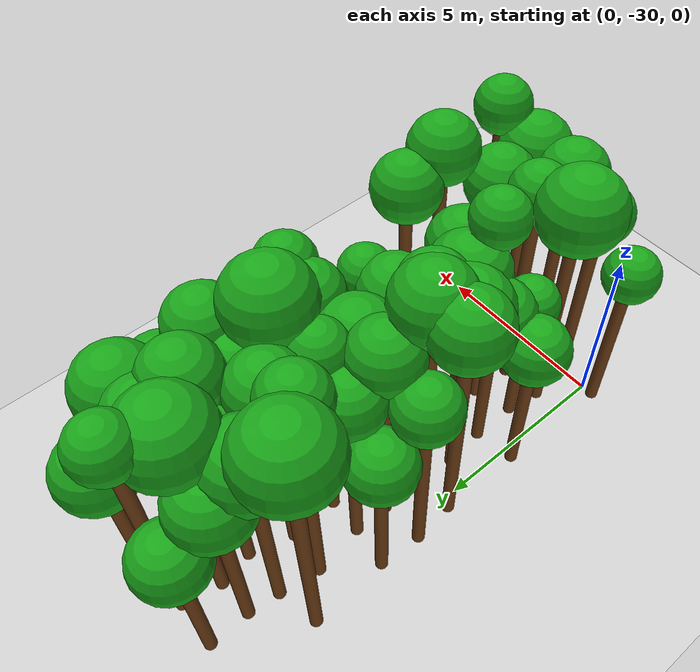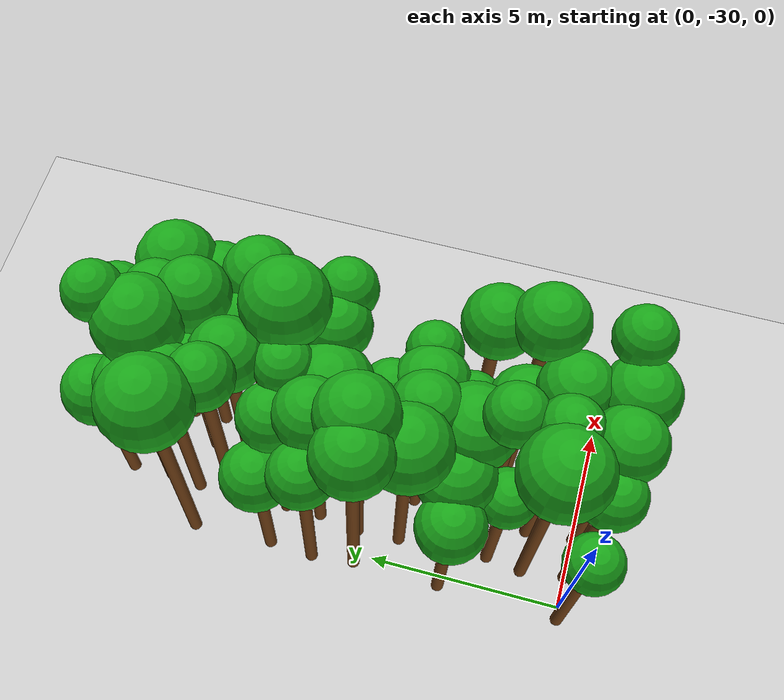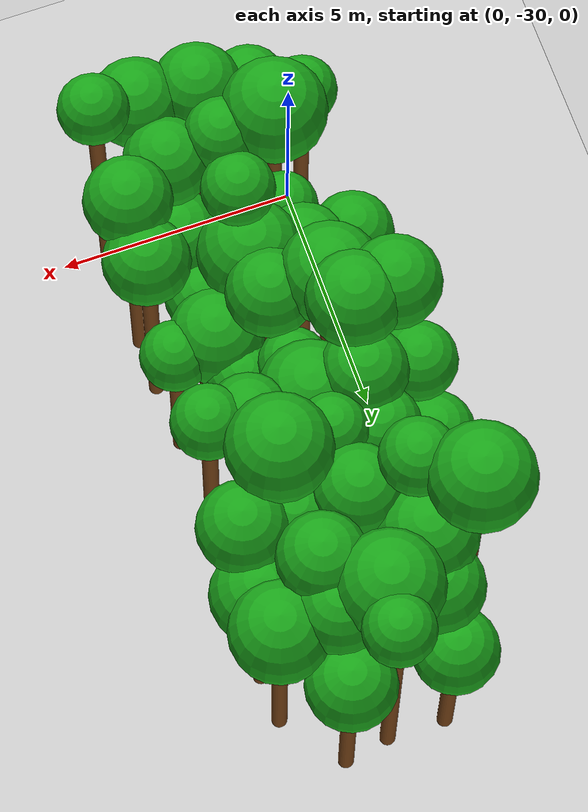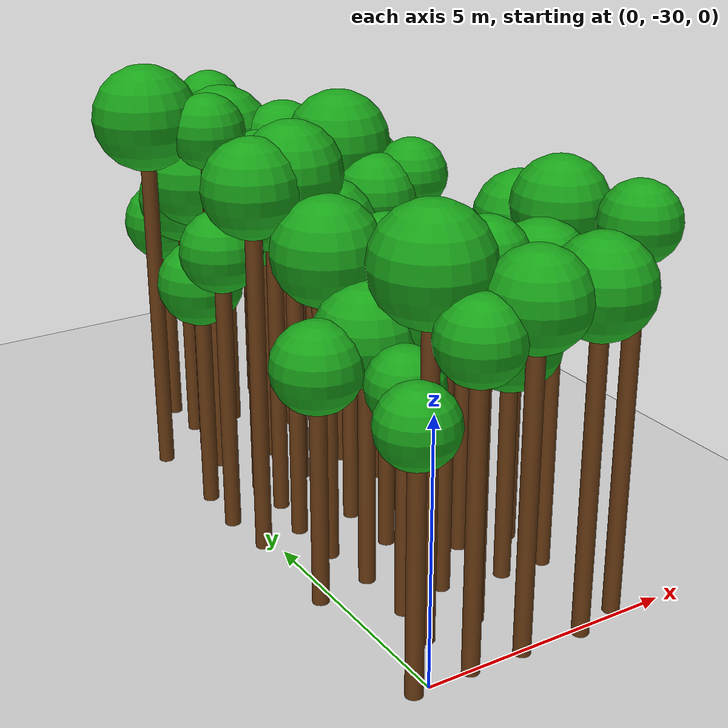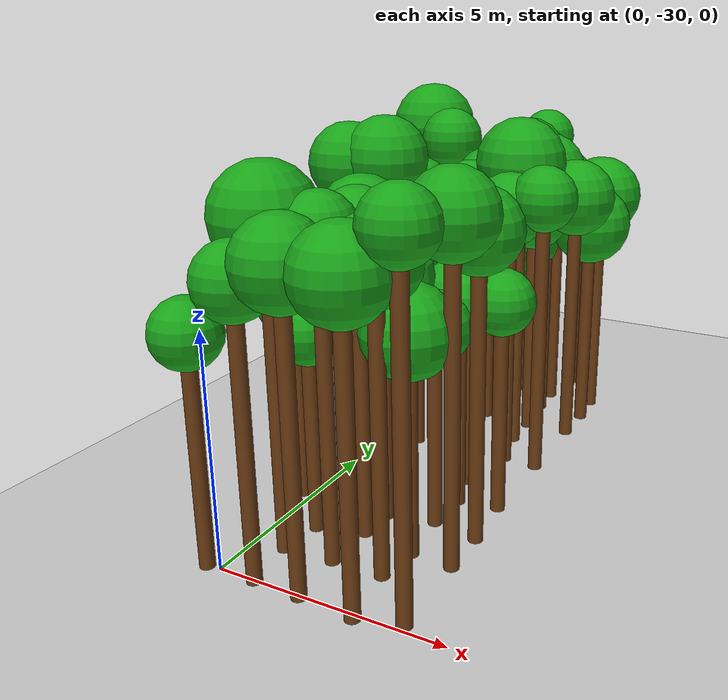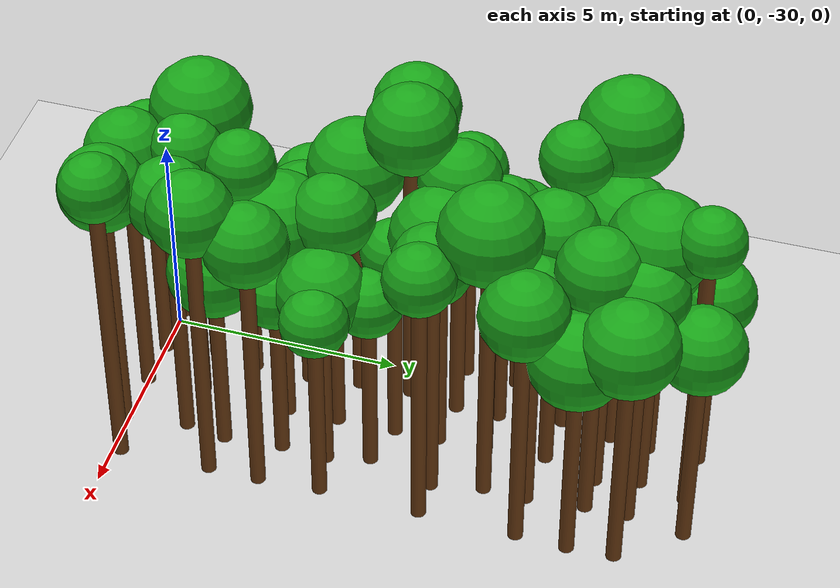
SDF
<sdf version="1.6">
 <world name="forest_world">
  <include><uri>model://sun</uri></include>
  <include><uri>model://ground_plane</uri></include>
  <model name="tree_1477_trunk">
   <static>true</static>
   <pose>-0.31 -30.02 2.23 0 0 0</pose>
   <link name="link">
    <collision name="collision">
     <geometry><cylinder><radius>0.16</radius><length>4.47</length></cylinder></geometry>
    </collision>
    <visual name="visual">
     <geometry><cylinder><radius>0.16</radius><length>4.47</length></cylinder></geometry>
     <material><ambient>0.35 0.20 0.05 1</ambient><diffuse>0.45 0.25 0.08 1</diffuse></material>
    </visual>
   </link>
  </model>
  <model name="tree_1477_leaf">
   <static>true</static>
   <pose>-0.31 -30.02 4.90 0 0 0</pose>
   <link name="link">
    <collision name="collision"><geometry><sphere><radius>0.71</radius></sphere></geometry></collision>
    <visual name="visual">
     <geometry><sphere><radius>0.71</radius></sphere></geometry>
     <material><ambient>0.05 0.45 0.05 1</ambient><diffuse>0.10 0.65 0.10 1</diffuse></material>
    </visual>
   </link>
  </model>
  <model name="tree_1480_trunk">
   <static>true</static>
   <pose>-0.24 -26.84 2.08 0 0 0</pose>
   <link name="link">
    <collision name="collision">
     <geometry><cylinder><radius>0.16</radius><length>4.16</length></cylinder></geometry>
    </collision>
    <visual name="visual">
     <geometry><cylinder><radius>0.16</radius><length>4.16</length></cylinder></geometry>
     <material><ambient>0.35 0.20 0.05 1</ambient><diffuse>0.45 0.25 0.08 1</diffuse></material>
    </visual>
   </link>
  </model>
  <model name="tree_1480_leaf">
   <static>true</static>
   <pose>-0.24 -26.84 4.66 0 0 0</pose>
   <link name="link">
    <collision name="collision"><geometry><sphere><radius>0.84</radius></sphere></geometry></collision>
    <visual name="visual">
     <geometry><sphere><radius>0.84</radius></sphere></geometry>
     <material><ambient>0.05 0.45 0.05 1</ambient><diffuse>0.10 0.65 0.10 1</diffuse></material>
    </visual>
   </link>
  </model>
  <model name="tree_1482_trunk">
   <static>true</static>
   <pose>-0.21 -24.56 3.34 0 0 0</pose>
   <link name="link">
    <collision name="collision">
     <geometry><cylinder><radius>0.16</radius><length>6.68</length></cylinder></geometry>
    </collision>
    <visual name="visual">
     <geometry><cylinder><radius>0.16</radius><length>6.68</length></cylinder></geometry>
     <material><ambient>0.35 0.20 0.05 1</ambient><diffuse>0.45 0.25 0.08 1</diffuse></material>
    </visual>
   </link>
  </model>
  <model name="tree_1482_leaf">
   <static>true</static>
   <pose>-0.21 -24.56 7.23 0 0 0</pose>
   <link name="link">
    <collision name="collision"><geometry><sphere><radius>0.92</radius></sphere></geometry></collision>
    <visual name="visual">
     <geometry><sphere><radius>0.92</radius></sphere></geometry>
     <material><ambient>0.05 0.45 0.05 1</ambient><diffuse>0.10 0.65 0.10 1</diffuse></material>
    </visual>
   </link>
  </model>
  <model name="tree_1483_trunk">
   <static>true</static>
   <pose>-0.32 -23.44 2.64 0 0 0</pose>
   <link name="link">
    <collision name="collision">
     <geometry><cylinder><radius>0.16</radius><length>5.29</length></cylinder></geometry>
    </collision>
    <visual name="visual">
     <geometry><cylinder><radius>0.16</radius><length>5.29</length></cylinder></geometry>
     <material><ambient>0.35 0.20 0.05 1</ambient><diffuse>0.45 0.25 0.08 1</diffuse></material>
    </visual>
   </link>
  </model>
  <model name="tree_1483_leaf">
   <static>true</static>
   <pose>-0.32 -23.44 5.76 0 0 0</pose>
   <link name="link">
    <collision name="collision"><geometry><sphere><radius>0.79</radius></sphere></geometry></collision>
    <visual name="visual">
     <geometry><sphere><radius>0.79</radius></sphere></geometry>
     <material><ambient>0.05 0.45 0.05 1</ambient><diffuse>0.10 0.65 0.10 1</diffuse></material>
    </visual>
   </link>
  </model>
  <model name="tree_1484_trunk">
   <static>true</static>
   <pose>-0.25 -22.29 2.13 0 0 0</pose>
   <link name="link">
    <collision name="collision">
     <geometry><cylinder><radius>0.16</radius><length>4.26</length></cylinder></geometry>
    </collision>
    <visual name="visual">
     <geometry><cylinder><radius>0.16</radius><length>4.26</length></cylinder></geometry>
     <material><ambient>0.35 0.20 0.05 1</ambient><diffuse>0.45 0.25 0.08 1</diffuse></material>
    </visual>
   </link>
  </model>
  <model name="tree_1484_leaf">
   <static>true</static>
   <pose>-0.25 -22.29 4.76 0 0 0</pose>
   <link name="link">
    <collision name="collision"><geometry><sphere><radius>0.84</radius></sphere></geometry></collision>
    <visual name="visual">
     <geometry><sphere><radius>0.84</radius></sphere></geometry>
     <material><ambient>0.05 0.45 0.05 1</ambient><diffuse>0.10 0.65 0.10 1</diffuse></material>
    </visual>
   </link>
  </model>
  <model name="tree_1486_trunk">
   <static>true</static>
   <pose>-0.32 -20.21 3.49 0 0 0</pose>
   <link name="link">
    <collision name="collision">
     <geometry><cylinder><radius>0.16</radius><length>6.97</length></cylinder></geometry>
    </collision>
    <visual name="visual">
     <geometry><cylinder><radius>0.16</radius><length>6.97</length></cylinder></geometry>
     <material><ambient>0.35 0.20 0.05 1</ambient><diffuse>0.45 0.25 0.08 1</diffuse></material>
    </visual>
   </link>
  </model>
  <model name="tree_1486_leaf">
   <static>true</static>
   <pose>-0.32 -20.21 7.61 0 0 0</pose>
   <link name="link">
    <collision name="collision"><geometry><sphere><radius>1.06</radius></sphere></geometry></collision>
    <visual name="visual">
     <geometry><sphere><radius>1.06</radius></sphere></geometry>
     <material><ambient>0.05 0.45 0.05 1</ambient><diffuse>0.10 0.65 0.10 1</diffuse></material>
    </visual>
   </link>
  </model>
  <model name="tree_1526_trunk">
   <static>true</static>
   <pose>0.84 -30.00 2.79 0 0 0</pose>
   <link name="link">
    <collision name="collision">
     <geometry><cylinder><radius>0.16</radius><length>5.59</length></cylinder></geometry>
    </collision>
    <visual name="visual">
     <geometry><cylinder><radius>0.16</radius><length>5.59</length></cylinder></geometry>
     <material><ambient>0.35 0.20 0.05 1</ambient><diffuse>0.45 0.25 0.08 1</diffuse></material>
    </visual>
   </link>
  </model>
  <model name="tree_1526_leaf">
   <static>true</static>
   <pose>0.84 -30.00 6.04 0 0 0</pose>
   <link name="link">
    <collision name="collision"><geometry><sphere><radius>0.76</radius></sphere></geometry></collision>
    <visual name="visual">
     <geometry><sphere><radius>0.76</radius></sphere></geometry>
     <material><ambient>0.05 0.45 0.05 1</ambient><diffuse>0.10 0.65 0.10 1</diffuse></material>
    </visual>
   </link>
  </model>
  <model name="tree_1527_trunk">
   <static>true</static>
   <pose>0.71 -28.85 3.15 0 0 0</pose>
   <link name="link">
    <collision name="collision">
     <geometry><cylinder><radius>0.16</radius><length>6.31</length></cylinder></geometry>
    </collision>
    <visual name="visual">
     <geometry><cylinder><radius>0.16</radius><length>6.31</length></cylinder></geometry>
     <material><ambient>0.35 0.20 0.05 1</ambient><diffuse>0.45 0.25 0.08 1</diffuse></material>
    </visual>
   </link>
  </model>
  <model name="tree_1527_leaf">
   <static>true</static>
   <pose>0.71 -28.85 6.94 0 0 0</pose>
   <link name="link">
    <collision name="collision"><geometry><sphere><radius>1.06</radius></sphere></geometry></collision>
    <visual name="visual">
     <geometry><sphere><radius>1.06</radius></sphere></geometry>
     <material><ambient>0.05 0.45 0.05 1</ambient><diffuse>0.10 0.65 0.10 1</diffuse></material>
    </visual>
   </link>
  </model>
  <model name="tree_1528_trunk">
   <static>true</static>
   <pose>0.85 -27.91 2.02 0 0 0</pose>
   <link name="link">
    <collision name="collision">
     <geometry><cylinder><radius>0.16</radius><length>4.04</length></cylinder></geometry>
    </collision>
    <visual name="visual">
     <geometry><cylinder><radius>0.16</radius><length>4.04</length></cylinder></geometry>
     <material><ambient>0.35 0.20 0.05 1</ambient><diffuse>0.45 0.25 0.08 1</diffuse></material>
    </visual>
   </link>
  </model>
  <model name="tree_1528_leaf">
   <static>true</static>
   <pose>0.85 -27.91 4.47 0 0 0</pose>
   <link name="link">
    <collision name="collision"><geometry><sphere><radius>0.72</radius></sphere></geometry></collision>
    <visual name="visual">
     <geometry><sphere><radius>0.72</radius></sphere></geometry>
     <material><ambient>0.05 0.45 0.05 1</ambient><diffuse>0.10 0.65 0.10 1</diffuse></material>
    </visual>
   </link>
  </model>
  <model name="tree_1529_trunk">
   <static>true</static>
   <pose>0.85 -26.67 2.19 0 0 0</pose>
   <link name="link">
    <collision name="collision">
     <geometry><cylinder><radius>0.16</radius><length>4.38</length></cylinder></geometry>
    </collision>
    <visual name="visual">
     <geometry><cylinder><radius>0.16</radius><length>4.38</length></cylinder></geometry>
     <material><ambient>0.35 0.20 0.05 1</ambient><diffuse>0.45 0.25 0.08 1</diffuse></material>
    </visual>
   </link>
  </model>
  <model name="tree_1529_leaf">
   <static>true</static>
   <pose>0.85 -26.67 4.96 0 0 0</pose>
   <link name="link">
    <collision name="collision"><geometry><sphere><radius>0.96</radius></sphere></geometry></collision>
    <visual name="visual">
     <geometry><sphere><radius>0.96</radius></sphere></geometry>
     <material><ambient>0.05 0.45 0.05 1</ambient><diffuse>0.10 0.65 0.10 1</diffuse></material>
    </visual>
   </link>
  </model>
  <model name="tree_1530_trunk">
   <static>true</static>
   <pose>0.72 -25.55 2.78 0 0 0</pose>
   <link name="link">
    <collision name="collision">
     <geometry><cylinder><radius>0.16</radius><length>5.56</length></cylinder></geometry>
    </collision>
    <visual name="visual">
     <geometry><cylinder><radius>0.16</radius><length>5.56</length></cylinder></geometry>
     <material><ambient>0.35 0.20 0.05 1</ambient><diffuse>0.45 0.25 0.08 1</diffuse></material>
    </visual>
   </link>
  </model>
  <model name="tree_1530_leaf">
   <static>true</static>
   <pose>0.72 -25.55 6.18 0 0 0</pose>
   <link name="link">
    <collision name="collision"><geometry><sphere><radius>1.03</radius></sphere></geometry></collision>
    <visual name="visual">
     <geometry><sphere><radius>1.03</radius></sphere></geometry>
     <material><ambient>0.05 0.45 0.05 1</ambient><diffuse>0.10 0.65 0.10 1</diffuse></material>
    </visual>
   </link>
  </model>
  <model name="tree_1531_trunk">
   <static>true</static>
   <pose>0.66 -24.43 3.40 0 0 0</pose>
   <link name="link">
    <collision name="collision">
     <geometry><cylinder><radius>0.16</radius><length>6.80</length></cylinder></geometry>
    </collision>
    <visual name="visual">
     <geometry><cylinder><radius>0.16</radius><length>6.80</length></cylinder></geometry>
     <material><ambient>0.35 0.20 0.05 1</ambient><diffuse>0.45 0.25 0.08 1</diffuse></material>
    </visual>
   </link>
  </model>
  <model name="tree_1531_leaf">
   <static>true</static>
   <pose>0.66 -24.43 7.37 0 0 0</pose>
   <link name="link">
    <collision name="collision"><geometry><sphere><radius>0.95</radius></sphere></geometry></collision>
    <visual name="visual">
     <geometry><sphere><radius>0.95</radius></sphere></geometry>
     <material><ambient>0.05 0.45 0.05 1</ambient><diffuse>0.10 0.65 0.10 1</diffuse></material>
    </visual>
   </link>
  </model>
  <model name="tree_1532_trunk">
   <static>true</static>
   <pose>0.83 -23.35 2.95 0 0 0</pose>
   <link name="link">
    <collision name="collision">
     <geometry><cylinder><radius>0.16</radius><length>5.90</length></cylinder></geometry>
    </collision>
    <visual name="visual">
     <geometry><cylinder><radius>0.16</radius><length>5.90</length></cylinder></geometry>
     <material><ambient>0.35 0.20 0.05 1</ambient><diffuse>0.45 0.25 0.08 1</diffuse></material>
    </visual>
   </link>
  </model>
  <model name="tree_1532_leaf">
   <static>true</static>
   <pose>0.83 -23.35 6.42 0 0 0</pose>
   <link name="link">
    <collision name="collision"><geometry><sphere><radius>0.87</radius></sphere></geometry></collision>
    <visual name="visual">
     <geometry><sphere><radius>0.87</radius></sphere></geometry>
     <material><ambient>0.05 0.45 0.05 1</ambient><diffuse>0.10 0.65 0.10 1</diffuse></material>
    </visual>
   </link>
  </model>
  <model name="tree_1533_trunk">
   <static>true</static>
   <pose>0.83 -22.41 2.64 0 0 0</pose>
   <link name="link">
    <collision name="collision">
     <geometry><cylinder><radius>0.16</radius><length>5.27</length></cylinder></geometry>
    </collision>
    <visual name="visual">
     <geometry><cylinder><radius>0.16</radius><length>5.27</length></cylinder></geometry>
     <material><ambient>0.35 0.20 0.05 1</ambient><diffuse>0.45 0.25 0.08 1</diffuse></material>
    </visual>
   </link>
  </model>
  <model name="tree_1533_leaf">
   <static>true</static>
   <pose>0.83 -22.41 5.76 0 0 0</pose>
   <link name="link">
    <collision name="collision"><geometry><sphere><radius>0.82</radius></sphere></geometry></collision>
    <visual name="visual">
     <geometry><sphere><radius>0.82</radius></sphere></geometry>
     <material><ambient>0.05 0.45 0.05 1</ambient><diffuse>0.10 0.65 0.10 1</diffuse></material>
    </visual>
   </link>
  </model>
  <model name="tree_1534_trunk">
   <static>true</static>
   <pose>0.62 -21.05 3.47 0 0 0</pose>
   <link name="link">
    <collision name="collision">
     <geometry><cylinder><radius>0.16</radius><length>6.93</length></cylinder></geometry>
    </collision>
    <visual name="visual">
     <geometry><cylinder><radius>0.16</radius><length>6.93</length></cylinder></geometry>
     <material><ambient>0.35 0.20 0.05 1</ambient><diffuse>0.45 0.25 0.08 1</diffuse></material>
    </visual>
   </link>
  </model>
  <model name="tree_1534_leaf">
   <static>true</static>
   <pose>0.62 -21.05 7.39 0 0 0</pose>
   <link name="link">
    <collision name="collision"><geometry><sphere><radius>0.76</radius></sphere></geometry></collision>
    <visual name="visual">
     <geometry><sphere><radius>0.76</radius></sphere></geometry>
     <material><ambient>0.05 0.45 0.05 1</ambient><diffuse>0.10 0.65 0.10 1</diffuse></material>
    </visual>
   </link>
  </model>
  <model name="tree_1535_trunk">
   <static>true</static>
   <pose>0.78 -19.96 2.78 0 0 0</pose>
   <link name="link">
    <collision name="collision">
     <geometry><cylinder><radius>0.16</radius><length>5.55</length></cylinder></geometry>
    </collision>
    <visual name="visual">
     <geometry><cylinder><radius>0.16</radius><length>5.55</length></cylinder></geometry>
     <material><ambient>0.35 0.20 0.05 1</ambient><diffuse>0.45 0.25 0.08 1</diffuse></material>
    </visual>
   </link>
  </model>
  <model name="tree_1535_leaf">
   <static>true</static>
   <pose>0.78 -19.96 6.15 0 0 0</pose>
   <link name="link">
    <collision name="collision"><geometry><sphere><radius>1.00</radius></sphere></geometry></collision>
    <visual name="visual">
     <geometry><sphere><radius>1.00</radius></sphere></geometry>
     <material><ambient>0.05 0.45 0.05 1</ambient><diffuse>0.10 0.65 0.10 1</diffuse></material>
    </visual>
   </link>
  </model>
  <model name="tree_1536_trunk">
   <static>true</static>
   <pose>0.88 -19.12 2.47 0 0 0</pose>
   <link name="link">
    <collision name="collision">
     <geometry><cylinder><radius>0.16</radius><length>4.93</length></cylinder></geometry>
    </collision>
    <visual name="visual">
     <geometry><cylinder><radius>0.16</radius><length>4.93</length></cylinder></geometry>
     <material><ambient>0.35 0.20 0.05 1</ambient><diffuse>0.45 0.25 0.08 1</diffuse></material>
    </visual>
   </link>
  </model>
  <model name="tree_1536_leaf">
   <static>true</static>
   <pose>0.88 -19.12 5.50 0 0 0</pose>
   <link name="link">
    <collision name="collision"><geometry><sphere><radius>0.95</radius></sphere></geometry></collision>
    <visual name="visual">
     <geometry><sphere><radius>0.95</radius></sphere></geometry>
     <material><ambient>0.05 0.45 0.05 1</ambient><diffuse>0.10 0.65 0.10 1</diffuse></material>
    </visual>
   </link>
  </model>
  <model name="tree_1537_trunk">
   <static>true</static>
   <pose>0.86 -18.04 2.08 0 0 0</pose>
   <link name="link">
    <collision name="collision">
     <geometry><cylinder><radius>0.16</radius><length>4.17</length></cylinder></geometry>
    </collision>
    <visual name="visual">
     <geometry><cylinder><radius>0.16</radius><length>4.17</length></cylinder></geometry>
     <material><ambient>0.35 0.20 0.05 1</ambient><diffuse>0.45 0.25 0.08 1</diffuse></material>
    </visual>
   </link>
  </model>
  <model name="tree_1537_leaf">
   <static>true</static>
   <pose>0.86 -18.04 4.68 0 0 0</pose>
   <link name="link">
    <collision name="collision"><geometry><sphere><radius>0.86</radius></sphere></geometry></collision>
    <visual name="visual">
     <geometry><sphere><radius>0.86</radius></sphere></geometry>
     <material><ambient>0.05 0.45 0.05 1</ambient><diffuse>0.10 0.65 0.10 1</diffuse></material>
    </visual>
   </link>
  </model>
  <model name="tree_1576_trunk">
   <static>true</static>
   <pose>1.90 -30.03 2.98 0 0 0</pose>
   <link name="link">
    <collision name="collision">
     <geometry><cylinder><radius>0.16</radius><length>5.96</length></cylinder></geometry>
    </collision>
    <visual name="visual">
     <geometry><cylinder><radius>0.16</radius><length>5.96</length></cylinder></geometry>
     <material><ambient>0.35 0.20 0.05 1</ambient><diffuse>0.45 0.25 0.08 1</diffuse></material>
    </visual>
   </link>
  </model>
  <model name="tree_1576_leaf">
   <static>true</static>
   <pose>1.90 -30.03 6.50 0 0 0</pose>
   <link name="link">
    <collision name="collision"><geometry><sphere><radius>0.89</radius></sphere></geometry></collision>
    <visual name="visual">
     <geometry><sphere><radius>0.89</radius></sphere></geometry>
     <material><ambient>0.05 0.45 0.05 1</ambient><diffuse>0.10 0.65 0.10 1</diffuse></material>
    </visual>
   </link>
  </model>
  <model name="tree_1577_trunk">
   <static>true</static>
   <pose>1.82 -28.77 3.16 0 0 0</pose>
   <link name="link">
    <collision name="collision">
     <geometry><cylinder><radius>0.16</radius><length>6.33</length></cylinder></geometry>
    </collision>
    <visual name="visual">
     <geometry><cylinder><radius>0.16</radius><length>6.33</length></cylinder></geometry>
     <material><ambient>0.35 0.20 0.05 1</ambient><diffuse>0.45 0.25 0.08 1</diffuse></material>
    </visual>
   </link>
  </model>
  <model name="tree_1577_leaf">
   <static>true</static>
   <pose>1.82 -28.77 6.78 0 0 0</pose>
   <link name="link">
    <collision name="collision"><geometry><sphere><radius>0.75</radius></sphere></geometry></collision>
    <visual name="visual">
     <geometry><sphere><radius>0.75</radius></sphere></geometry>
     <material><ambient>0.05 0.45 0.05 1</ambient><diffuse>0.10 0.65 0.10 1</diffuse></material>
    </visual>
   </link>
  </model>
  <model name="tree_1578_trunk">
   <static>true</static>
   <pose>1.88 -27.62 3.11 0 0 0</pose>
   <link name="link">
    <collision name="collision">
     <geometry><cylinder><radius>0.16</radius><length>6.22</length></cylinder></geometry>
    </collision>
    <visual name="visual">
     <geometry><cylinder><radius>0.16</radius><length>6.22</length></cylinder></geometry>
     <material><ambient>0.35 0.20 0.05 1</ambient><diffuse>0.45 0.25 0.08 1</diffuse></material>
    </visual>
   </link>
  </model>
  <model name="tree_1578_leaf">
   <static>true</static>
   <pose>1.88 -27.62 6.67 0 0 0</pose>
   <link name="link">
    <collision name="collision"><geometry><sphere><radius>0.74</radius></sphere></geometry></collision>
    <visual name="visual">
     <geometry><sphere><radius>0.74</radius></sphere></geometry>
     <material><ambient>0.05 0.45 0.05 1</ambient><diffuse>0.10 0.65 0.10 1</diffuse></material>
    </visual>
   </link>
  </model>
  <model name="tree_1579_trunk">
   <static>true</static>
   <pose>1.93 -26.80 2.39 0 0 0</pose>
   <link name="link">
    <collision name="collision">
     <geometry><cylinder><radius>0.16</radius><length>4.79</length></cylinder></geometry>
    </collision>
    <visual name="visual">
     <geometry><cylinder><radius>0.16</radius><length>4.79</length></cylinder></geometry>
     <material><ambient>0.35 0.20 0.05 1</ambient><diffuse>0.45 0.25 0.08 1</diffuse></material>
    </visual>
   </link>
  </model>
  <model name="tree_1579_leaf">
   <static>true</static>
   <pose>1.93 -26.80 5.43 0 0 0</pose>
   <link name="link">
    <collision name="collision"><geometry><sphere><radius>1.06</radius></sphere></geometry></collision>
    <visual name="visual">
     <geometry><sphere><radius>1.06</radius></sphere></geometry>
     <material><ambient>0.05 0.45 0.05 1</ambient><diffuse>0.10 0.65 0.10 1</diffuse></material>
    </visual>
   </link>
  </model>
  <model name="tree_1580_trunk">
   <static>true</static>
   <pose>1.90 -25.69 2.65 0 0 0</pose>
   <link name="link">
    <collision name="collision">
     <geometry><cylinder><radius>0.16</radius><length>5.31</length></cylinder></geometry>
    </collision>
    <visual name="visual">
     <geometry><cylinder><radius>0.16</radius><length>5.31</length></cylinder></geometry>
     <material><ambient>0.35 0.20 0.05 1</ambient><diffuse>0.45 0.25 0.08 1</diffuse></material>
    </visual>
   </link>
  </model>
  <model name="tree_1580_leaf">
   <static>true</static>
   <pose>1.90 -25.69 5.84 0 0 0</pose>
   <link name="link">
    <collision name="collision"><geometry><sphere><radius>0.89</radius></sphere></geometry></collision>
    <visual name="visual">
     <geometry><sphere><radius>0.89</radius></sphere></geometry>
     <material><ambient>0.05 0.45 0.05 1</ambient><diffuse>0.10 0.65 0.10 1</diffuse></material>
    </visual>
   </link>
  </model>
  <model name="tree_1581_trunk">
   <static>true</static>
   <pose>1.86 -24.42 2.35 0 0 0</pose>
   <link name="link">
    <collision name="collision">
     <geometry><cylinder><radius>0.16</radius><length>4.71</length></cylinder></geometry>
    </collision>
    <visual name="visual">
     <geometry><cylinder><radius>0.16</radius><length>4.71</length></cylinder></geometry>
     <material><ambient>0.35 0.20 0.05 1</ambient><diffuse>0.45 0.25 0.08 1</diffuse></material>
    </visual>
   </link>
  </model>
  <model name="tree_1581_leaf">
   <static>true</static>
   <pose>1.86 -24.42 5.13 0 0 0</pose>
   <link name="link">
    <collision name="collision"><geometry><sphere><radius>0.71</radius></sphere></geometry></collision>
    <visual name="visual">
     <geometry><sphere><radius>0.71</radius></sphere></geometry>
     <material><ambient>0.05 0.45 0.05 1</ambient><diffuse>0.10 0.65 0.10 1</diffuse></material>
    </visual>
   </link>
  </model>
  <model name="tree_1582_trunk">
   <static>true</static>
   <pose>1.86 -23.46 2.58 0 0 0</pose>
   <link name="link">
    <collision name="collision">
     <geometry><cylinder><radius>0.16</radius><length>5.16</length></cylinder></geometry>
    </collision>
    <visual name="visual">
     <geometry><cylinder><radius>0.16</radius><length>5.16</length></cylinder></geometry>
     <material><ambient>0.35 0.20 0.05 1</ambient><diffuse>0.45 0.25 0.08 1</diffuse></material>
    </visual>
   </link>
  </model>
  <model name="tree_1582_leaf">
   <static>true</static>
   <pose>1.86 -23.46 5.80 0 0 0</pose>
   <link name="link">
    <collision name="collision"><geometry><sphere><radius>1.06</radius></sphere></geometry></collision>
    <visual name="visual">
     <geometry><sphere><radius>1.06</radius></sphere></geometry>
     <material><ambient>0.05 0.45 0.05 1</ambient><diffuse>0.10 0.65 0.10 1</diffuse></material>
    </visual>
   </link>
  </model>
  <model name="tree_1583_trunk">
   <static>true</static>
   <pose>1.81 -22.44 3.00 0 0 0</pose>
   <link name="link">
    <collision name="collision">
     <geometry><cylinder><radius>0.16</radius><length>6.01</length></cylinder></geometry>
    </collision>
    <visual name="visual">
     <geometry><cylinder><radius>0.16</radius><length>6.01</length></cylinder></geometry>
     <material><ambient>0.35 0.20 0.05 1</ambient><diffuse>0.45 0.25 0.08 1</diffuse></material>
    </visual>
   </link>
  </model>
  <model name="tree_1583_leaf">
   <static>true</static>
   <pose>1.81 -22.44 6.43 0 0 0</pose>
   <link name="link">
    <collision name="collision"><geometry><sphere><radius>0.71</radius></sphere></geometry></collision>
    <visual name="visual">
     <geometry><sphere><radius>0.71</radius></sphere></geometry>
     <material><ambient>0.05 0.45 0.05 1</ambient><diffuse>0.10 0.65 0.10 1</diffuse></material>
    </visual>
   </link>
  </model>
  <model name="tree_1584_trunk">
   <static>true</static>
   <pose>1.74 -21.14 2.93 0 0 0</pose>
   <link name="link">
    <collision name="collision">
     <geometry><cylinder><radius>0.16</radius><length>5.86</length></cylinder></geometry>
    </collision>
    <visual name="visual">
     <geometry><cylinder><radius>0.16</radius><length>5.86</length></cylinder></geometry>
     <material><ambient>0.35 0.20 0.05 1</ambient><diffuse>0.45 0.25 0.08 1</diffuse></material>
    </visual>
   </link>
  </model>
  <model name="tree_1584_leaf">
   <static>true</static>
   <pose>1.74 -21.14 6.39 0 0 0</pose>
   <link name="link">
    <collision name="collision"><geometry><sphere><radius>0.89</radius></sphere></geometry></collision>
    <visual name="visual">
     <geometry><sphere><radius>0.89</radius></sphere></geometry>
     <material><ambient>0.05 0.45 0.05 1</ambient><diffuse>0.10 0.65 0.10 1</diffuse></material>
    </visual>
   </link>
  </model>
  <model name="tree_1585_trunk">
   <static>true</static>
   <pose>2.08 -19.99 2.05 0 0 0</pose>
   <link name="link">
    <collision name="collision">
     <geometry><cylinder><radius>0.16</radius><length>4.11</length></cylinder></geometry>
    </collision>
    <visual name="visual">
     <geometry><cylinder><radius>0.16</radius><length>4.11</length></cylinder></geometry>
     <material><ambient>0.35 0.20 0.05 1</ambient><diffuse>0.45 0.25 0.08 1</diffuse></material>
    </visual>
   </link>
  </model>
  <model name="tree_1585_leaf">
   <static>true</static>
   <pose>2.08 -19.99 4.75 0 0 0</pose>
   <link name="link">
    <collision name="collision"><geometry><sphere><radius>1.07</radius></sphere></geometry></collision>
    <visual name="visual">
     <geometry><sphere><radius>1.07</radius></sphere></geometry>
     <material><ambient>0.05 0.45 0.05 1</ambient><diffuse>0.10 0.65 0.10 1</diffuse></material>
    </visual>
   </link>
  </model>
  <model name="tree_1586_trunk">
   <static>true</static>
   <pose>1.88 -19.07 3.04 0 0 0</pose>
   <link name="link">
    <collision name="collision">
     <geometry><cylinder><radius>0.16</radius><length>6.08</length></cylinder></geometry>
    </collision>
    <visual name="visual">
     <geometry><cylinder><radius>0.16</radius><length>6.08</length></cylinder></geometry>
     <material><ambient>0.35 0.20 0.05 1</ambient><diffuse>0.45 0.25 0.08 1</diffuse></material>
    </visual>
   </link>
  </model>
  <model name="tree_1586_leaf">
   <static>true</static>
   <pose>1.88 -19.07 6.72 0 0 0</pose>
   <link name="link">
    <collision name="collision"><geometry><sphere><radius>1.07</radius></sphere></geometry></collision>
    <visual name="visual">
     <geometry><sphere><radius>1.07</radius></sphere></geometry>
     <material><ambient>0.05 0.45 0.05 1</ambient><diffuse>0.10 0.65 0.10 1</diffuse></material>
    </visual>
   </link>
  </model>
  <model name="tree_1587_trunk">
   <static>true</static>
   <pose>2.08 -18.06 3.38 0 0 0</pose>
   <link name="link">
    <collision name="collision">
     <geometry><cylinder><radius>0.16</radius><length>6.77</length></cylinder></geometry>
    </collision>
    <visual name="visual">
     <geometry><cylinder><radius>0.16</radius><length>6.77</length></cylinder></geometry>
     <material><ambient>0.35 0.20 0.05 1</ambient><diffuse>0.45 0.25 0.08 1</diffuse></material>
    </visual>
   </link>
  </model>
  <model name="tree_1587_leaf">
   <static>true</static>
   <pose>2.08 -18.06 7.20 0 0 0</pose>
   <link name="link">
    <collision name="collision"><geometry><sphere><radius>0.71</radius></sphere></geometry></collision>
    <visual name="visual">
     <geometry><sphere><radius>0.71</radius></sphere></geometry>
     <material><ambient>0.05 0.45 0.05 1</ambient><diffuse>0.10 0.65 0.10 1</diffuse></material>
    </visual>
   </link>
  </model>
  <model name="tree_1627_trunk">
   <static>true</static>
   <pose>3.13 -30.10 2.97 0 0 0</pose>
   <link name="link">
    <collision name="collision">
     <geometry><cylinder><radius>0.16</radius><length>5.94</length></cylinder></geometry>
    </collision>
    <visual name="visual">
     <geometry><cylinder><radius>0.16</radius><length>5.94</length></cylinder></geometry>
     <material><ambient>0.35 0.20 0.05 1</ambient><diffuse>0.45 0.25 0.08 1</diffuse></material>
    </visual>
   </link>
  </model>
  <model name="tree_1627_leaf">
   <static>true</static>
   <pose>3.13 -30.10 6.49 0 0 0</pose>
   <link name="link">
    <collision name="collision"><geometry><sphere><radius>0.91</radius></sphere></geometry></collision>
    <visual name="visual">
     <geometry><sphere><radius>0.91</radius></sphere></geometry>
     <material><ambient>0.05 0.45 0.05 1</ambient><diffuse>0.10 0.65 0.10 1</diffuse></material>
    </visual>
   </link>
  </model>
  <model name="tree_1628_trunk">
   <static>true</static>
   <pose>2.95 -28.75 2.92 0 0 0</pose>
   <link name="link">
    <collision name="collision">
     <geometry><cylinder><radius>0.16</radius><length>5.85</length></cylinder></geometry>
    </collision>
    <visual name="visual">
     <geometry><cylinder><radius>0.16</radius><length>5.85</length></cylinder></geometry>
     <material><ambient>0.35 0.20 0.05 1</ambient><diffuse>0.45 0.25 0.08 1</diffuse></material>
    </visual>
   </link>
  </model>
  <model name="tree_1628_leaf">
   <static>true</static>
   <pose>2.95 -28.75 6.38 0 0 0</pose>
   <link name="link">
    <collision name="collision"><geometry><sphere><radius>0.89</radius></sphere></geometry></collision>
    <visual name="visual">
     <geometry><sphere><radius>0.89</radius></sphere></geometry>
     <material><ambient>0.05 0.45 0.05 1</ambient><diffuse>0.10 0.65 0.10 1</diffuse></material>
    </visual>
   </link>
  </model>
  <model name="tree_1629_trunk">
   <static>true</static>
   <pose>3.10 -27.85 2.12 0 0 0</pose>
   <link name="link">
    <collision name="collision">
     <geometry><cylinder><radius>0.16</radius><length>4.23</length></cylinder></geometry>
    </collision>
    <visual name="visual">
     <geometry><cylinder><radius>0.16</radius><length>4.23</length></cylinder></geometry>
     <material><ambient>0.35 0.20 0.05 1</ambient><diffuse>0.45 0.25 0.08 1</diffuse></material>
    </visual>
   </link>
  </model>
  <model name="tree_1629_leaf">
   <static>true</static>
   <pose>3.10 -27.85 4.81 0 0 0</pose>
   <link name="link">
    <collision name="collision"><geometry><sphere><radius>0.96</radius></sphere></geometry></collision>
    <visual name="visual">
     <geometry><sphere><radius>0.96</radius></sphere></geometry>
     <material><ambient>0.05 0.45 0.05 1</ambient><diffuse>0.10 0.65 0.10 1</diffuse></material>
    </visual>
   </link>
  </model>
  <model name="tree_1630_trunk">
   <static>true</static>
   <pose>2.99 -26.59 2.00 0 0 0</pose>
   <link name="link">
    <collision name="collision">
     <geometry><cylinder><radius>0.16</radius><length>4.00</length></cylinder></geometry>
    </collision>
    <visual name="visual">
     <geometry><cylinder><radius>0.16</radius><length>4.00</length></cylinder></geometry>
     <material><ambient>0.35 0.20 0.05 1</ambient><diffuse>0.45 0.25 0.08 1</diffuse></material>
    </visual>
   </link>
  </model>
  <model name="tree_1630_leaf">
   <static>true</static>
   <pose>2.99 -26.59 4.47 0 0 0</pose>
   <link name="link">
    <collision name="collision"><geometry><sphere><radius>0.77</radius></sphere></geometry></collision>
    <visual name="visual">
     <geometry><sphere><radius>0.77</radius></sphere></geometry>
     <material><ambient>0.05 0.45 0.05 1</ambient><diffuse>0.10 0.65 0.10 1</diffuse></material>
    </visual>
   </link>
  </model>
  <model name="tree_1631_trunk">
   <static>true</static>
   <pose>3.05 -25.59 2.10 0 0 0</pose>
   <link name="link">
    <collision name="collision">
     <geometry><cylinder><radius>0.16</radius><length>4.19</length></cylinder></geometry>
    </collision>
    <visual name="visual">
     <geometry><cylinder><radius>0.16</radius><length>4.19</length></cylinder></geometry>
     <material><ambient>0.35 0.20 0.05 1</ambient><diffuse>0.45 0.25 0.08 1</diffuse></material>
    </visual>
   </link>
  </model>
  <model name="tree_1631_leaf">
   <static>true</static>
   <pose>3.05 -25.59 4.77 0 0 0</pose>
   <link name="link">
    <collision name="collision"><geometry><sphere><radius>0.96</radius></sphere></geometry></collision>
    <visual name="visual">
     <geometry><sphere><radius>0.96</radius></sphere></geometry>
     <material><ambient>0.05 0.45 0.05 1</ambient><diffuse>0.10 0.65 0.10 1</diffuse></material>
    </visual>
   </link>
  </model>
  <model name="tree_1632_trunk">
   <static>true</static>
   <pose>2.82 -24.68 2.05 0 0 0</pose>
   <link name="link">
    <collision name="collision">
     <geometry><cylinder><radius>0.16</radius><length>4.09</length></cylinder></geometry>
    </collision>
    <visual name="visual">
     <geometry><cylinder><radius>0.16</radius><length>4.09</length></cylinder></geometry>
     <material><ambient>0.35 0.20 0.05 1</ambient><diffuse>0.45 0.25 0.08 1</diffuse></material>
    </visual>
   </link>
  </model>
  <model name="tree_1632_leaf">
   <static>true</static>
   <pose>2.82 -24.68 4.53 0 0 0</pose>
   <link name="link">
    <collision name="collision"><geometry><sphere><radius>0.73</radius></sphere></geometry></collision>
    <visual name="visual">
     <geometry><sphere><radius>0.73</radius></sphere></geometry>
     <material><ambient>0.05 0.45 0.05 1</ambient><diffuse>0.10 0.65 0.10 1</diffuse></material>
    </visual>
   </link>
  </model>
  <model name="tree_1633_trunk">
   <static>true</static>
   <pose>3.18 -23.26 2.87 0 0 0</pose>
   <link name="link">
    <collision name="collision">
     <geometry><cylinder><radius>0.16</radius><length>5.73</length></cylinder></geometry>
    </collision>
    <visual name="visual">
     <geometry><cylinder><radius>0.16</radius><length>5.73</length></cylinder></geometry>
     <material><ambient>0.35 0.20 0.05 1</ambient><diffuse>0.45 0.25 0.08 1</diffuse></material>
    </visual>
   </link>
  </model>
  <model name="tree_1633_leaf">
   <static>true</static>
   <pose>3.18 -23.26 6.24 0 0 0</pose>
   <link name="link">
    <collision name="collision"><geometry><sphere><radius>0.84</radius></sphere></geometry></collision>
    <visual name="visual">
     <geometry><sphere><radius>0.84</radius></sphere></geometry>
     <material><ambient>0.05 0.45 0.05 1</ambient><diffuse>0.10 0.65 0.10 1</diffuse></material>
    </visual>
   </link>
  </model>
  <model name="tree_1634_trunk">
   <static>true</static>
   <pose>2.96 -22.17 3.24 0 0 0</pose>
   <link name="link">
    <collision name="collision">
     <geometry><cylinder><radius>0.16</radius><length>6.48</length></cylinder></geometry>
    </collision>
    <visual name="visual">
     <geometry><cylinder><radius>0.16</radius><length>6.48</length></cylinder></geometry>
     <material><ambient>0.35 0.20 0.05 1</ambient><diffuse>0.45 0.25 0.08 1</diffuse></material>
    </visual>
   </link>
  </model>
  <model name="tree_1634_leaf">
   <static>true</static>
   <pose>2.96 -22.17 7.11 0 0 0</pose>
   <link name="link">
    <collision name="collision"><geometry><sphere><radius>1.05</radius></sphere></geometry></collision>
    <visual name="visual">
     <geometry><sphere><radius>1.05</radius></sphere></geometry>
     <material><ambient>0.05 0.45 0.05 1</ambient><diffuse>0.10 0.65 0.10 1</diffuse></material>
    </visual>
   </link>
  </model>
  <model name="tree_1635_trunk">
   <static>true</static>
   <pose>2.98 -21.25 2.61 0 0 0</pose>
   <link name="link">
    <collision name="collision">
     <geometry><cylinder><radius>0.16</radius><length>5.22</length></cylinder></geometry>
    </collision>
    <visual name="visual">
     <geometry><cylinder><radius>0.16</radius><length>5.22</length></cylinder></geometry>
     <material><ambient>0.35 0.20 0.05 1</ambient><diffuse>0.45 0.25 0.08 1</diffuse></material>
    </visual>
   </link>
  </model>
  <model name="tree_1635_leaf">
   <static>true</static>
   <pose>2.98 -21.25 5.75 0 0 0</pose>
   <link name="link">
    <collision name="collision"><geometry><sphere><radius>0.89</radius></sphere></geometry></collision>
    <visual name="visual">
     <geometry><sphere><radius>0.89</radius></sphere></geometry>
     <material><ambient>0.05 0.45 0.05 1</ambient><diffuse>0.10 0.65 0.10 1</diffuse></material>
    </visual>
   </link>
  </model>
  <model name="tree_1636_trunk">
   <static>true</static>
   <pose>2.87 -20.01 3.06 0 0 0</pose>
   <link name="link">
    <collision name="collision">
     <geometry><cylinder><radius>0.16</radius><length>6.11</length></cylinder></geometry>
    </collision>
    <visual name="visual">
     <geometry><cylinder><radius>0.16</radius><length>6.11</length></cylinder></geometry>
     <material><ambient>0.35 0.20 0.05 1</ambient><diffuse>0.45 0.25 0.08 1</diffuse></material>
    </visual>
   </link>
  </model>
  <model name="tree_1636_leaf">
   <static>true</static>
   <pose>2.87 -20.01 6.64 0 0 0</pose>
   <link name="link">
    <collision name="collision"><geometry><sphere><radius>0.89</radius></sphere></geometry></collision>
    <visual name="visual">
     <geometry><sphere><radius>0.89</radius></sphere></geometry>
     <material><ambient>0.05 0.45 0.05 1</ambient><diffuse>0.10 0.65 0.10 1</diffuse></material>
    </visual>
   </link>
  </model>
  <model name="tree_1637_trunk">
   <static>true</static>
   <pose>2.84 -19.12 2.82 0 0 0</pose>
   <link name="link">
    <collision name="collision">
     <geometry><cylinder><radius>0.16</radius><length>5.65</length></cylinder></geometry>
    </collision>
    <visual name="visual">
     <geometry><cylinder><radius>0.16</radius><length>5.65</length></cylinder></geometry>
     <material><ambient>0.35 0.20 0.05 1</ambient><diffuse>0.45 0.25 0.08 1</diffuse></material>
    </visual>
   </link>
  </model>
  <model name="tree_1637_leaf">
   <static>true</static>
   <pose>2.84 -19.12 6.19 0 0 0</pose>
   <link name="link">
    <collision name="collision"><geometry><sphere><radius>0.90</radius></sphere></geometry></collision>
    <visual name="visual">
     <geometry><sphere><radius>0.90</radius></sphere></geometry>
     <material><ambient>0.05 0.45 0.05 1</ambient><diffuse>0.10 0.65 0.10 1</diffuse></material>
    </visual>
   </link>
  </model>
  <model name="tree_1638_trunk">
   <static>true</static>
   <pose>3.03 -17.89 2.37 0 0 0</pose>
   <link name="link">
    <collision name="collision">
     <geometry><cylinder><radius>0.16</radius><length>4.75</length></cylinder></geometry>
    </collision>
    <visual name="visual">
     <geometry><cylinder><radius>0.16</radius><length>4.75</length></cylinder></geometry>
     <material><ambient>0.35 0.20 0.05 1</ambient><diffuse>0.45 0.25 0.08 1</diffuse></material>
    </visual>
   </link>
  </model>
  <model name="tree_1638_leaf">
   <static>true</static>
   <pose>3.03 -17.89 5.28 0 0 0</pose>
   <link name="link">
    <collision name="collision"><geometry><sphere><radius>0.90</radius></sphere></geometry></collision>
    <visual name="visual">
     <geometry><sphere><radius>0.90</radius></sphere></geometry>
     <material><ambient>0.05 0.45 0.05 1</ambient><diffuse>0.10 0.65 0.10 1</diffuse></material>
    </visual>
   </link>
  </model>
  <model name="tree_1682_trunk">
   <static>true</static>
   <pose>4.06 -29.84 3.45 0 0 0</pose>
   <link name="link">
    <collision name="collision">
     <geometry><cylinder><radius>0.16</radius><length>6.90</length></cylinder></geometry>
    </collision>
    <visual name="visual">
     <geometry><cylinder><radius>0.16</radius><length>6.90</length></cylinder></geometry>
     <material><ambient>0.35 0.20 0.05 1</ambient><diffuse>0.45 0.25 0.08 1</diffuse></material>
    </visual>
   </link>
  </model>
  <model name="tree_1682_leaf">
   <static>true</static>
   <pose>4.06 -29.84 7.33 0 0 0</pose>
   <link name="link">
    <collision name="collision"><geometry><sphere><radius>0.71</radius></sphere></geometry></collision>
    <visual name="visual">
     <geometry><sphere><radius>0.71</radius></sphere></geometry>
     <material><ambient>0.05 0.45 0.05 1</ambient><diffuse>0.10 0.65 0.10 1</diffuse></material>
    </visual>
   </link>
  </model>
  <model name="tree_1684_trunk">
   <static>true</static>
   <pose>4.02 -27.88 3.29 0 0 0</pose>
   <link name="link">
    <collision name="collision">
     <geometry><cylinder><radius>0.16</radius><length>6.59</length></cylinder></geometry>
    </collision>
    <visual name="visual">
     <geometry><cylinder><radius>0.16</radius><length>6.59</length></cylinder></geometry>
     <material><ambient>0.35 0.20 0.05 1</ambient><diffuse>0.45 0.25 0.08 1</diffuse></material>
    </visual>
   </link>
  </model>
  <model name="tree_1684_leaf">
   <static>true</static>
   <pose>4.02 -27.88 7.12 0 0 0</pose>
   <link name="link">
    <collision name="collision"><geometry><sphere><radius>0.88</radius></sphere></geometry></collision>
    <visual name="visual">
     <geometry><sphere><radius>0.88</radius></sphere></geometry>
     <material><ambient>0.05 0.45 0.05 1</ambient><diffuse>0.10 0.65 0.10 1</diffuse></material>
    </visual>
   </link>
  </model>
  <model name="tree_1685_trunk">
   <static>true</static>
   <pose>4.03 -26.78 3.04 0 0 0</pose>
   <link name="link">
    <collision name="collision">
     <geometry><cylinder><radius>0.16</radius><length>6.08</length></cylinder></geometry>
    </collision>
    <visual name="visual">
     <geometry><cylinder><radius>0.16</radius><length>6.08</length></cylinder></geometry>
     <material><ambient>0.35 0.20 0.05 1</ambient><diffuse>0.45 0.25 0.08 1</diffuse></material>
    </visual>
   </link>
  </model>
  <model name="tree_1685_leaf">
   <static>true</static>
   <pose>4.03 -26.78 6.60 0 0 0</pose>
   <link name="link">
    <collision name="collision"><geometry><sphere><radius>0.87</radius></sphere></geometry></collision>
    <visual name="visual">
     <geometry><sphere><radius>0.87</radius></sphere></geometry>
     <material><ambient>0.05 0.45 0.05 1</ambient><diffuse>0.10 0.65 0.10 1</diffuse></material>
    </visual>
   </link>
  </model>
  <model name="tree_1686_trunk">
   <static>true</static>
   <pose>3.95 -25.45 2.19 0 0 0</pose>
   <link name="link">
    <collision name="collision">
     <geometry><cylinder><radius>0.16</radius><length>4.37</length></cylinder></geometry>
    </collision>
    <visual name="visual">
     <geometry><cylinder><radius>0.16</radius><length>4.37</length></cylinder></geometry>
     <material><ambient>0.35 0.20 0.05 1</ambient><diffuse>0.45 0.25 0.08 1</diffuse></material>
    </visual>
   </link>
  </model>
  <model name="tree_1686_leaf">
   <static>true</static>
   <pose>3.95 -25.45 4.80 0 0 0</pose>
   <link name="link">
    <collision name="collision"><geometry><sphere><radius>0.71</radius></sphere></geometry></collision>
    <visual name="visual">
     <geometry><sphere><radius>0.71</radius></sphere></geometry>
     <material><ambient>0.05 0.45 0.05 1</ambient><diffuse>0.10 0.65 0.10 1</diffuse></material>
    </visual>
   </link>
  </model>
  <model name="tree_1688_trunk">
   <static>true</static>
   <pose>3.98 -23.29 3.05 0 0 0</pose>
   <link name="link">
    <collision name="collision">
     <geometry><cylinder><radius>0.16</radius><length>6.11</length></cylinder></geometry>
    </collision>
    <visual name="visual">
     <geometry><cylinder><radius>0.16</radius><length>6.11</length></cylinder></geometry>
     <material><ambient>0.35 0.20 0.05 1</ambient><diffuse>0.45 0.25 0.08 1</diffuse></material>
    </visual>
   </link>
  </model>
  <model name="tree_1688_leaf">
   <static>true</static>
   <pose>3.98 -23.29 6.55 0 0 0</pose>
   <link name="link">
    <collision name="collision"><geometry><sphere><radius>0.74</radius></sphere></geometry></collision>
    <visual name="visual">
     <geometry><sphere><radius>0.74</radius></sphere></geometry>
     <material><ambient>0.05 0.45 0.05 1</ambient><diffuse>0.10 0.65 0.10 1</diffuse></material>
    </visual>
   </link>
  </model>
  <model name="tree_1690_trunk">
   <static>true</static>
   <pose>4.02 -21.20 2.83 0 0 0</pose>
   <link name="link">
    <collision name="collision">
     <geometry><cylinder><radius>0.16</radius><length>5.66</length></cylinder></geometry>
    </collision>
    <visual name="visual">
     <geometry><cylinder><radius>0.16</radius><length>5.66</length></cylinder></geometry>
     <material><ambient>0.35 0.20 0.05 1</ambient><diffuse>0.45 0.25 0.08 1</diffuse></material>
    </visual>
   </link>
  </model>
  <model name="tree_1690_leaf">
   <static>true</static>
   <pose>4.02 -21.20 6.21 0 0 0</pose>
   <link name="link">
    <collision name="collision"><geometry><sphere><radius>0.91</radius></sphere></geometry></collision>
    <visual name="visual">
     <geometry><sphere><radius>0.91</radius></sphere></geometry>
     <material><ambient>0.05 0.45 0.05 1</ambient><diffuse>0.10 0.65 0.10 1</diffuse></material>
    </visual>
   </link>
  </model>
  <model name="tree_1691_trunk">
   <static>true</static>
   <pose>4.06 -20.11 2.38 0 0 0</pose>
   <link name="link">
    <collision name="collision">
     <geometry><cylinder><radius>0.16</radius><length>4.76</length></cylinder></geometry>
    </collision>
    <visual name="visual">
     <geometry><cylinder><radius>0.16</radius><length>4.76</length></cylinder></geometry>
     <material><ambient>0.35 0.20 0.05 1</ambient><diffuse>0.45 0.25 0.08 1</diffuse></material>
    </visual>
   </link>
  </model>
  <model name="tree_1691_leaf">
   <static>true</static>
   <pose>4.06 -20.11 5.35 0 0 0</pose>
   <link name="link">
    <collision name="collision"><geometry><sphere><radius>0.99</radius></sphere></geometry></collision>
    <visual name="visual">
     <geometry><sphere><radius>0.99</radius></sphere></geometry>
     <material><ambient>0.05 0.45 0.05 1</ambient><diffuse>0.10 0.65 0.10 1</diffuse></material>
    </visual>
   </link>
  </model>
  <model name="tree_1692_trunk">
   <static>true</static>
   <pose>4.01 -19.13 2.65 0 0 0</pose>
   <link name="link">
    <collision name="collision">
     <geometry><cylinder><radius>0.16</radius><length>5.30</length></cylinder></geometry>
    </collision>
    <visual name="visual">
     <geometry><cylinder><radius>0.16</radius><length>5.30</length></cylinder></geometry>
     <material><ambient>0.35 0.20 0.05 1</ambient><diffuse>0.45 0.25 0.08 1</diffuse></material>
    </visual>
   </link>
  </model>
  <model name="tree_1692_leaf">
   <static>true</static>
   <pose>4.01 -19.13 5.90 0 0 0</pose>
   <link name="link">
    <collision name="collision"><geometry><sphere><radius>1.00</radius></sphere></geometry></collision>
    <visual name="visual">
     <geometry><sphere><radius>1.00</radius></sphere></geometry>
     <material><ambient>0.05 0.45 0.05 1</ambient><diffuse>0.10 0.65 0.10 1</diffuse></material>
    </visual>
   </link>
  </model>
 </world>
</sdf>
